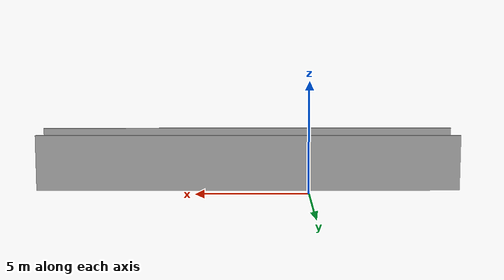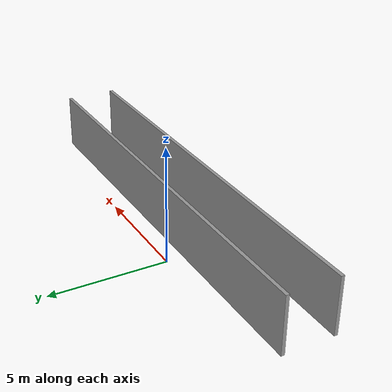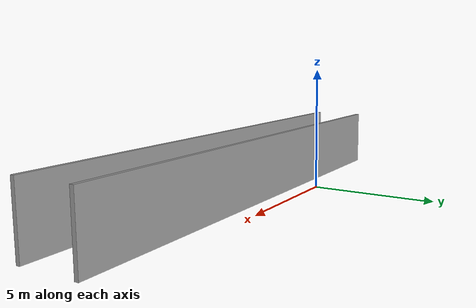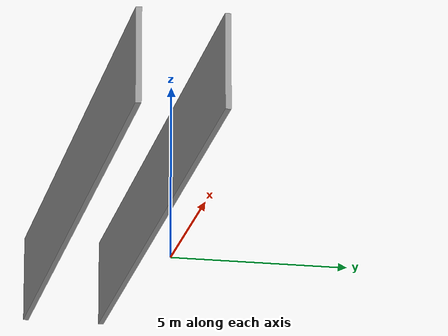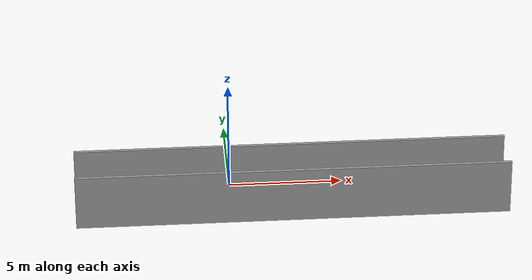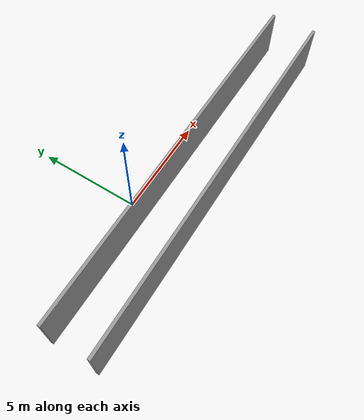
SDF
<?xml version='1.0'?>
<sdf version='1.6'>
  <model name='corridor'>
    <pose frame=''>2.6757 -1.56835 0 0 -0 0</pose>
    <link name='Wall_0'>
      <collision name='Wall_0_Collision'>
        <geometry>
          <box>
            <size>19 0.15 2.5</size>
          </box>
        </geometry>
        <pose frame=''>0 0 1.25 0 -0 0</pose>
      </collision>
      <visual name='Wall_0_Visual'>
        <pose frame=''>0 0 1.25 0 -0 0</pose>
        <geometry>
          <box>
            <size>19 0.15 2.5</size>
          </box>
        </geometry>
        <material>
          <script>
            <uri>file://media/materials/scripts/gazebo.material</uri>
            <name>Gazebo/Grey</name>
          </script>
          <ambient>1 1 1 1</ambient>
        </material>
        <meta>
          <layer>0</layer>
        </meta>
      </visual>
      <pose frame=''>-0.010705 0.738355 0 0 -0 0</pose>
    </link>
    <link name='Wall_2'>
      <collision name='Wall_2_Collision'>
        <geometry>
          <box>
            <size>19 0.15 2.5</size>
          </box>
        </geometry>
        <pose frame=''>0 0 1.25 0 -0 0</pose>
      </collision>
      <visual name='Wall_2_Visual'>
        <pose frame=''>0 0 1.25 0 -0 0</pose>
        <geometry>
          <box>
            <size>19 0.15 2.5</size>
          </box>
        </geometry>
        <material>
          <script>
            <uri>file://media/materials/scripts/gazebo.material</uri>
            <name>Gazebo/Grey</name>
          </script>
          <ambient>1 1 1 1</ambient>
        </material>
        <meta>
          <layer>0</layer>
        </meta>
      </visual>
      <pose frame=''>0.010706 -1.49335 0 0 -0 0</pose>
    </link>
    <static>1</static>
  </model>
</sdf>
